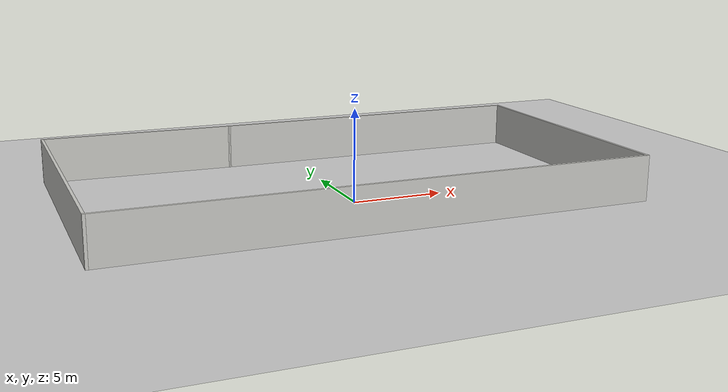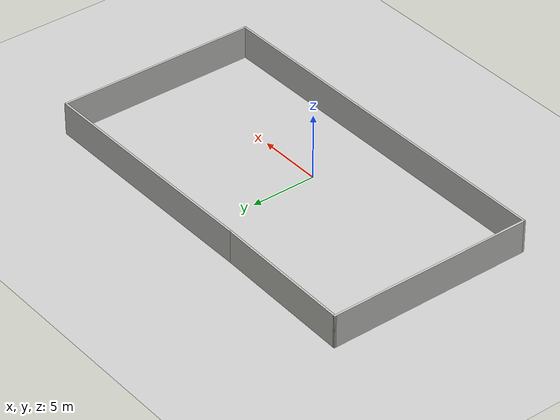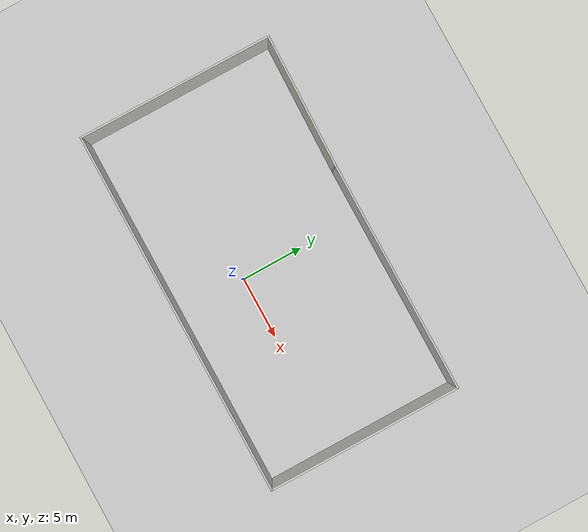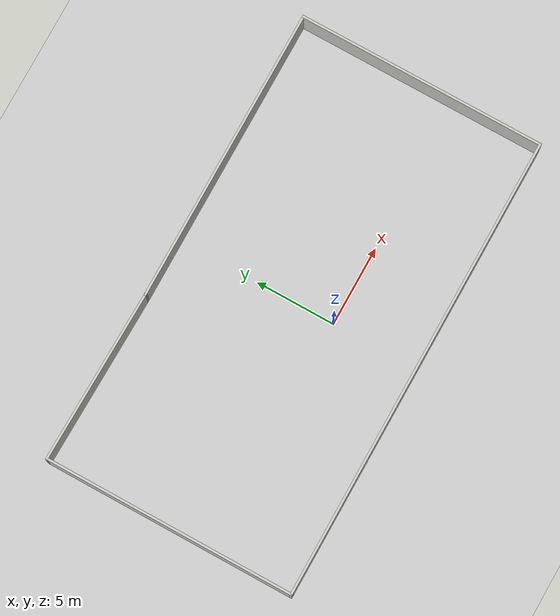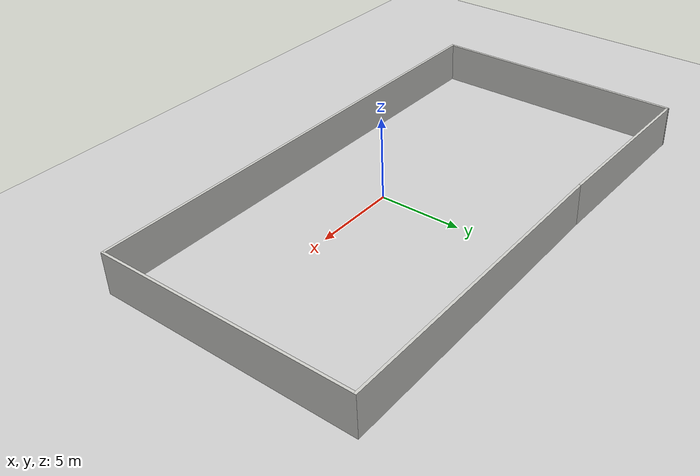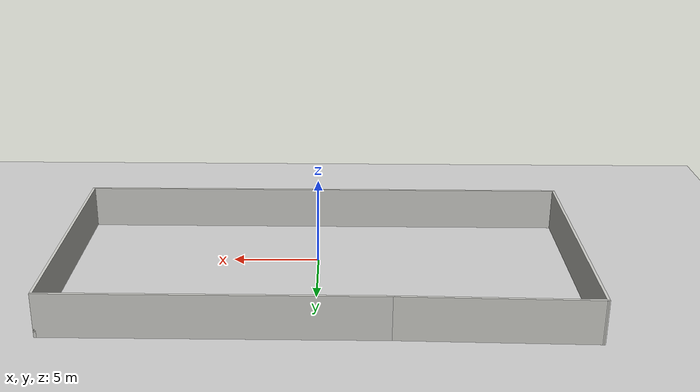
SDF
<sdf version="1.7">
 <world name="default">
  <light name="sun" type="directional">
   <pose>0 0 10 0 -0 0</pose>
   <diffuse>0.8 0.8 0.8 1</diffuse>
   <specular>0.2 0.2 0.2 1</specular>
   <attenuation>
    <range>1000</range>
    <constant>0.9</constant>
    <linear>0.01</linear>
    <quadratic>0.001</quadratic>
   </attenuation>
   <direction>-0.5 0.1 -0.9</direction>
   <spot><inner_angle>0</inner_angle><outer_angle>0</outer_angle><falloff>0</falloff></spot>
  </light>
  <model name="ground_plane">
   <static>1</static>
   <link name="link">
    <collision name="collision">
     <geometry><plane><normal>0 0 1</normal><size>100 100</size></plane></geometry>
     <surface><friction><ode><mu>100</mu><mu2>50</mu2></ode></friction></surface>
    </collision>
    <visual name="visual">
     <cast_shadows>0</cast_shadows>
     <geometry><plane><normal>0 0 1</normal><size>100 100</size></plane></geometry>
     <material>
      <script><uri>file://media/materials/scripts/gazebo.material</uri><name>Gazebo/Grey</name></script>
     </material>
    </visual>
   </link>
  </model>
  <gravity>0 0 -9.8</gravity>
  <magnetic_field>6e-06 2.3e-05 -4.2e-05</magnetic_field>
  <atmosphere type="adiabatic"/>
  <physics type="ode">
   <max_step_size>0.001</max_step_size>
   <real_time_factor>1</real_time_factor>
   <real_time_update_rate>1000</real_time_update_rate>
  </physics>
  <scene><ambient>0.4 0.4 0.4 1</ambient><background>0.7 0.7 0.7 1</background><shadows>1</shadows></scene>
  <audio><device>default</device></audio>
  <spherical_coordinates>
   <surface_model>EARTH_WGS84</surface_model>
   <latitude_deg>0</latitude_deg>
   <longitude_deg>0</longitude_deg>
   <elevation>0</elevation>
   <heading_deg>0</heading_deg>
  </spherical_coordinates>
  <model name="test2">
   <pose>-0.172222 2.37831 0 0 -0 0</pose>
   <link name="Wall_5">
    <collision name="Wall_5_Collision">
     <geometry><box><size>18.5 0.15 2.5</size></box></geometry>
     <pose>0 0 1.25 0 -0 0</pose>
    </collision>
    <visual name="Wall_5_Visual">
     <pose>0 0 1.25 0 -0 0</pose>
     <geometry><box><size>18.5 0.15 2.5</size></box></geometry>
     <material>
      <script><uri>file://media/materials/scripts/gazebo.material</uri><name>Gazebo/CeilingTiled</name></script>
      <ambient>1 1 1 1</ambient>
     </material>
     <meta><layer>0</layer></meta>
    </visual>
    <pose>5.37586 7.54914 0 0 -0 0</pose>
   </link>
   <link name="Wall_6">
    <collision name="Wall_6_Collision">
     <geometry><box><size>15.5 0.15 2.5</size></box></geometry>
     <pose>0 0 1.25 0 -0 0</pose>
    </collision>
    <visual name="Wall_6_Visual">
     <pose>0 0 1.25 0 -0 0</pose>
     <geometry><box><size>15.5 0.15 2.5</size></box></geometry>
     <material>
      <script><uri>file://media/materials/scripts/gazebo.material</uri><name>Gazebo/CeilingTiled</name></script>
      <ambient>1 1 1 1</ambient>
     </material>
     <meta><layer>0</layer></meta>
    </visual>
    <pose>14.5509 -0.125861 0 0 -0 -1.5708</pose>
   </link>
   <link name="Wall_7">
    <collision name="Wall_7_Collision">
     <geometry><box><size>29.25 0.15 2.5</size></box></geometry>
     <pose>0 0 1.25 0 -0 0</pose>
    </collision>
    <visual name="Wall_7_Visual">
     <pose>0 0 1.25 0 -0 0</pose>
     <geometry><box><size>29.25 0.15 2.5</size></box></geometry>
     <material>
      <script><uri>file://media/materials/scripts/gazebo.material</uri><name>Gazebo/CeilingTiled</name></script>
      <ambient>1 1 1 1</ambient>
     </material>
     <meta><layer>0</layer></meta>
    </visual>
    <pose>0.000862 -7.80086 0 0 -0 3.14159</pose>
   </link>
   <link name="Wall_8">
    <collision name="Wall_8_Collision">
     <geometry><box><size>15.75 0.15 2.5</size></box></geometry>
     <pose>0 0 1.25 0 -0 0</pose>
    </collision>
    <visual name="Wall_8_Visual">
     <pose>0 0 1.25 0 -0 0</pose>
     <geometry><box><size>15.75 0.15 2.5</size></box></geometry>
     <material>
      <script><uri>file://media/materials/scripts/gazebo.material</uri><name>Gazebo/CeilingTiled</name></script>
      <ambient>1 1 1 1</ambient>
     </material>
     <meta><layer>0</layer></meta>
    </visual>
    <pose>-14.5491 -0.000861 0 0 -0 1.5708</pose>
   </link>
   <link name="Wall_9">
    <collision name="Wall_9_Collision">
     <geometry><box><size>10.9029 0.15 2.5</size></box></geometry>
     <pose>0 0 1.25 0 -0 0</pose>
    </collision>
    <visual name="Wall_9_Visual">
     <pose>0 0 1.25 0 -0 0</pose>
     <geometry><box><size>10.9029 0.15 2.5</size></box></geometry>
     <material>
      <script><uri>file://media/materials/scripts/gazebo.material</uri><name>Gazebo/CeilingTiled</name></script>
      <ambient>1 1 1 1</ambient>
     </material>
     <meta><layer>0</layer></meta>
    </visual>
    <pose>-9.17414 7.67414 0 0 -0 -0.023252</pose>
   </link>
   <static>1</static>
  </model>
 </world>
</sdf>
